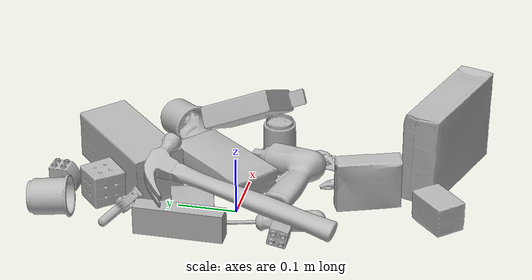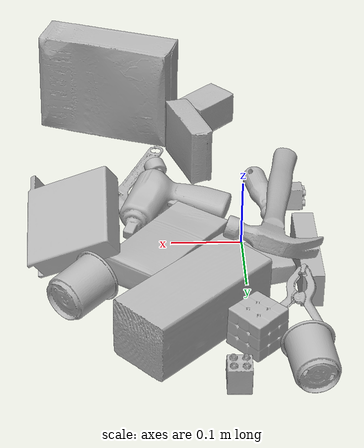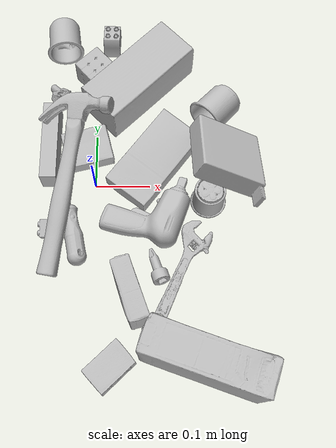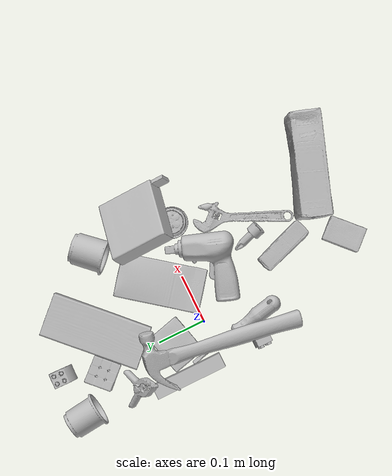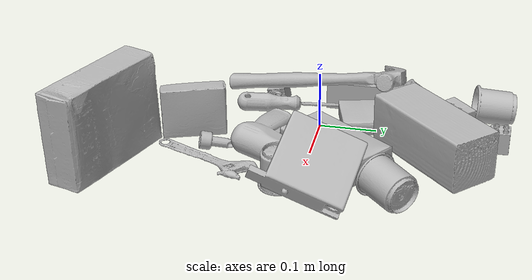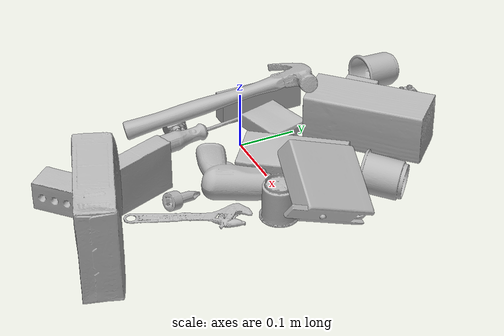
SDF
<sdf version="1.4">
  <world name="default">
    <light name="light1" type="point">
      <pose>0 0 1 0 0 0</pose>
      <diffuse>3 3 3 1</diffuse>
      <specular>3 3 3 1</specular>
    </light>
    <light name="light2" type="point">
      <pose>0 0.5 2 0 0 0</pose>
      <diffuse>1 1 1 1</diffuse>
      <specular>1 1 1 1</specular>
    </light>
    <light name="light3" type="point">
      <pose>0 0.5 2 0 0 0</pose>
      <diffuse>3 3 3 1</diffuse>
      <specular>3 3 3 1</specular>
    </light>
    <scene>
      <ambient>0.7 0.7 0.7</ambient>
    </scene>
    <model name="box21">
      <link name="link_box21">
        <collision name="default">
          <geometry>
            <mesh>
              <uri>model://cracker_box/collision_meshes/collision.obj</uri>
              <scale>1.0 1.0 1.0</scale>
            </mesh>
          </geometry>
          <surface>
            <friction>
              <ode>
                <mu>0.5</mu>
                <mu2>0.5</mu2>
              </ode>
            </friction>
          <contact>
        <ode>
            <max_vel>0</max_vel>
            <min_depth>0.0001</min_depth>
            <kp>1e8</kp>
        </ode>
    </contact></surface>
        </collision>
        <visual name="default">
          <geometry>
            <mesh>
              <uri>model://cracker_box/visual_meshes/visual.dae</uri>
              <scale>1.0 1.0 1.0</scale>
            </mesh>
          </geometry>
        </visual>
        <inertial>
          <mass>2.732837677001953</mass>
          <pose>0.000946416228543967 0.0002543424488976598 -0.0017029533628374338 -0.00031620734042352985 -0.011106490532052917 0.002546795466230165</pose>
          <inertia>
            <ixx>0.0069511193</ixx>
            <iyy>0.011477663</iyy>
            <izz>0.01637968</izz>
            <ixy>0</ixy>
            <ixz>0</ixz>
            <iyz>0</iyz>
          </inertia>
        </inertial>
      </link>
      <pose>0.1892460137605667 -0.32129380106925964 0.08175767213106155 1.545234192613694 0.009040240342031788 2.812722534082688</pose>
    </model>
    <model name="box22">
      <link name="link_box22">
        <collision name="default">
          <geometry>
            <mesh>
              <uri>model://jenga/collision_meshes/collision.obj</uri>
              <scale>1.0 1.0 1.0</scale>
            </mesh>
          </geometry>
          <surface>
            <friction>
              <ode>
                <mu>0.5</mu>
                <mu2>0.5</mu2>
              </ode>
            </friction>
          <contact>
        <ode>
            <max_vel>0</max_vel>
            <min_depth>0.0001</min_depth>
            <kp>1e8</kp>
        </ode>
    </contact></surface>
        </collision>
        <visual name="default">
          <geometry>
            <mesh>
              <uri>model://jenga/visual_meshes/visual.dae</uri>
              <scale>1.0 1.0 1.0</scale>
            </mesh>
          </geometry>
        </visual>
        <inertial>
          <mass>0.1563216596841812</mass>
          <pose>-2.502855807051674e-07 -0.00010250010382151231 -4.0923401684267446e-05 0.0 -7.34215461761844e-07 0.0</pose>
          <inertia>
            <ixx>4.3258e-05</ixx>
            <iyy>0.000293115</iyy>
            <izz>0.0003129252</izz>
            <ixy>0</ixy>
            <ixz>0</ixz>
            <iyz>0</iyz>
          </inertia>
        </inertial>
      </link>
      <pose>-0.08483713865280151 0.07525363564491272 0.024496935307979584 -1.5775022559674907 2.990207971248664e-07 1.5707966009774597</pose>
    </model>
    <model name="box23">
      <link name="link_box23">
        <collision name="default">
          <geometry>
            <mesh>
              <uri>model://pudding_box/collision_meshes/collision.obj</uri>
              <scale>1.0 1.0 1.0</scale>
            </mesh>
          </geometry>
          <surface>
            <friction>
              <ode>
                <mu>0.5</mu>
                <mu2>0.5</mu2>
              </ode>
            </friction>
          <contact>
        <ode>
            <max_vel>0</max_vel>
            <min_depth>0.0001</min_depth>
            <kp>1e8</kp>
        </ode>
    </contact></surface>
        </collision>
        <visual name="default">
          <geometry>
            <mesh>
              <uri>model://pudding_box/visual_meshes/visual.dae</uri>
              <scale>1.0 1.0 1.0</scale>
            </mesh>
          </geometry>
        </visual>
        <inertial>
          <mass>0.32993465662002563</mass>
          <pose>0.0004894821904599667 0.0008067885064519942 -0.0005188827635720372 0.005213102236317791 -0.0066038015122011 0.020079823288174207</pose>
          <inertia>
            <ixx>0.00037297411</ixx>
            <iyy>0.00025093966</iyy>
            <izz>0.0005507938</izz>
            <ixy>0</ixy>
            <ixz>0</ixz>
            <iyz>0</iyz>
          </inertia>
        </inertial>
      </link>
      <pose>0.06701834499835968 -0.2083444595336914 0.044596586376428604 0.006649396555571304 -1.547314143325358 -2.819919636246475</pose>
    </model>
    <model name="cup1">
      <link name="link_cup1">
        <collision name="default">
          <geometry>
            <mesh>
              <uri>model://c_cups/collision_meshes/collision.obj</uri>
              <scale>1.0 1.0 1.0</scale>
            </mesh>
          </geometry>
          <surface>
            <friction>
              <ode>
                <mu>0.5</mu>
                <mu2>0.5</mu2>
              </ode>
            </friction>
          <contact>
        <ode>
            <max_vel>0</max_vel>
            <min_depth>0.0001</min_depth>
            <kp>1e8</kp>
        </ode>
    </contact></surface>
        </collision>
        <visual name="default">
          <geometry>
            <mesh>
              <uri>model://c_cups/visual_meshes/visual.dae</uri>
              <scale>1.0 1.0 1.0</scale>
            </mesh>
          </geometry>
        </visual>
        <inertial>
          <mass>0.05159630998969078</mass>
          <pose>0.0007237254758365452 0.0020153908990323544 -0.001275097718462348 0.3021575981944983 0.01346171900925468 -0.08771841488334552</pose>
          <inertia>
            <ixx>3.8371487e-05</ixx>
            <iyy>3.7693397e-05</iyy>
            <izz>3.3934528e-05</izz>
            <ixy>0</ixy>
            <ixz>0</ixz>
            <iyz>0</iyz>
          </inertia>
        </inertial>
      </link>
      <pose>0.20729155838489532 -0.029617182910442352 0.03347041830420494 -3.1411557644716868 0.000299906052219935 0.10694606698177749</pose>
    </model>
    <model name="cup2">
      <link name="link_cup2">
        <collision name="default">
          <geometry>
            <mesh>
              <uri>model://d_cups/collision_meshes/collision.obj</uri>
              <scale>1.0 1.0 1.0</scale>
            </mesh>
          </geometry>
          <surface>
            <friction>
              <ode>
                <mu>0.5</mu>
                <mu2>0.5</mu2>
              </ode>
            </friction>
          <contact>
        <ode>
            <max_vel>0</max_vel>
            <min_depth>0.0001</min_depth>
            <kp>1e8</kp>
        </ode>
    </contact></surface>
        </collision>
        <visual name="default">
          <geometry>
            <mesh>
              <uri>model://d_cups/visual_meshes/visual.dae</uri>
              <scale>1.0 1.0 1.0</scale>
            </mesh>
          </geometry>
        </visual>
        <inertial>
          <mass>0.029099034145474434</mass>
          <pose>0.0008068051538430154 0.0019117402844130993 -0.0022666510194540024 0.24013101341738077 -0.2470893725106806 0.5942204262094062</pose>
          <inertia>
            <ixx>2.436274e-05</ixx>
            <iyy>2.429223e-05</iyy>
            <izz>2.2052422e-05</izz>
            <ixy>0</ixy>
            <ixz>0</ixz>
            <iyz>0</iyz>
          </inertia>
        </inertial>
      </link>
      <pose>-0.06834589689970016 0.29915329813957214 0.032593198120594025 -1.4779868664191136 -0.21591249889587133 -3.0464109565798694</pose>
    </model>
    <model name="box11">
      <link name="link_box11">
        <collision name="default">
          <geometry>
            <mesh>
              <uri>model://sugar_box/collision_meshes/collision.obj</uri>
              <scale>1.0 1.0 1.0</scale>
            </mesh>
          </geometry>
          <surface>
            <friction>
              <ode>
                <mu>0.5</mu>
                <mu2>0.5</mu2>
              </ode>
            </friction>
          <contact>
        <ode>
            <max_vel>0</max_vel>
            <min_depth>0.0001</min_depth>
            <kp>1e8</kp>
        </ode>
    </contact></surface>
        </collision>
        <visual name="default">
          <geometry>
            <mesh>
              <uri>model://sugar_box/visual_meshes/visual.dae</uri>
              <scale>1.0 1.0 1.0</scale>
            </mesh>
          </geometry>
        </visual>
        <inertial>
          <mass>0.6083751916885376</mass>
          <pose>0.0010343727190047503 3.849109634757042e-05 -0.00036364805418998003 -0.00040462662026216373 0.00105066363904409 0.002615379021562279</pose>
          <inertia>
            <ixx>0.0005068966</ixx>
            <iyy>0.0016383935</iyy>
            <izz>0.0019613528</izz>
            <ixy>0</ixy>
            <ixz>0</ixz>
            <iyz>0</iyz>
          </inertia>
        </inertial>
      </link>
      <pose>0.10782263427972794 0.04438312351703644 0.022599507123231888 -3.1117128022671023 -0.02297001136945148 0.9118202043964284</pose>
    </model>
    <model name="box12">
      <link name="link_box12">
        <collision name="default">
          <geometry>
            <mesh>
              <uri>model://wood_block/collision_meshes/collision.obj</uri>
              <scale>1.0 1.0 1.0</scale>
            </mesh>
          </geometry>
          <surface>
            <friction>
              <ode>
                <mu>0.5</mu>
                <mu2>0.5</mu2>
              </ode>
            </friction>
          <contact>
        <ode>
            <max_vel>0</max_vel>
            <min_depth>0.0001</min_depth>
            <kp>1e8</kp>
        </ode>
    </contact></surface>
        </collision>
        <visual name="default">
          <geometry>
            <mesh>
              <uri>model://wood_block/visual_meshes/visual.dae</uri>
              <scale>1.0 1.0 1.0</scale>
            </mesh>
          </geometry>
        </visual>
        <inertial>
          <mass>1.904224157333374</mass>
          <pose>-5.813315510749817e-06 -0.000570809468626976 0.0002640858292579651 -0.05220878944738684 -0.005192694452018099 -0.006861378422653873</pose>
          <inertia>
            <ixx>0.00254814</ixx>
            <iyy>0.008049577</iyy>
            <izz>0.008019466</izz>
            <ixy>0</ixy>
            <ixz>0</ixz>
            <iyz>0</iyz>
          </inertia>
        </inertial>
      </link>
      <pose>0.07841295748949051 0.20211081206798553 0.045700665563344955 1.5681276560291715 -0.006938688678653019 0.7771782150305362</pose>
    </model>
    <model name="box13">
      <link name="link_box13">
        <collision name="default">
          <geometry>
            <mesh>
              <uri>model://gelatin_box/collision_meshes/collision.obj</uri>
              <scale>1.0 1.0 1.0</scale>
            </mesh>
          </geometry>
          <surface>
            <friction>
              <ode>
                <mu>0.5</mu>
                <mu2>0.5</mu2>
              </ode>
            </friction>
          <contact>
        <ode>
            <max_vel>0</max_vel>
            <min_depth>0.0001</min_depth>
            <kp>1e8</kp>
        </ode>
    </contact></surface>
        </collision>
        <visual name="default">
          <geometry>
            <mesh>
              <uri>model://gelatin_box/visual_meshes/visual.dae</uri>
              <scale>1.0 1.0 1.0</scale>
            </mesh>
          </geometry>
        </visual>
        <inertial>
          <mass>0.15982484817504883</mass>
          <pose>0.0004319618456065655 0.00011156871187267825 -0.0003640321083366871 -0.001050372093012012 -0.00475581868936722 0.016440559471878533</pose>
          <inertia>
            <ixx>0.000112823305</ixx>
            <iyy>8.0589096e-05</iyy>
            <izz>0.0001717422</izz>
            <ixy>0</ixy>
            <ixz>0</ixz>
            <iyz>0</iyz>
          </inertia>
        </inertial>
      </link>
      <pose>-0.017152264714241028 0.07064320147037506 0.015168320387601852 0.005597502352654905 -0.007304561090122923 1.8160721521415089</pose>
    </model>
    <model name="box14">
      <link name="link_box14">
        <collision name="default">
          <geometry>
            <mesh>
              <uri>model://rubiks_cube/collision_meshes/collision.obj</uri>
              <scale>1.0 1.0 1.0</scale>
            </mesh>
          </geometry>
          <surface>
            <friction>
              <ode>
                <mu>0.5</mu>
                <mu2>0.5</mu2>
              </ode>
            </friction>
          <contact>
        <ode>
            <max_vel>0</max_vel>
            <min_depth>0.0001</min_depth>
            <kp>1e8</kp>
        </ode>
    </contact></surface>
        </collision>
        <visual name="default">
          <geometry>
            <mesh>
              <uri>model://rubiks_cube/visual_meshes/visual.dae</uri>
              <scale>1.0 1.0 1.0</scale>
            </mesh>
          </geometry>
        </visual>
        <inertial>
          <mass>0.19606205821037292</mass>
          <pose>2.6721043468569405e-05 5.256967051536776e-05 -7.264316536748083e-06 -0.05467227514375443 -0.09814085307594407 -0.03445353526761094</pose>
          <inertia>
            <ixx>0.00010833746</ixx>
            <iyy>0.000107832224</iyy>
            <izz>0.00010923522</izz>
            <ixy>0</ixy>
            <ixz>0</ixz>
            <iyz>0</iyz>
          </inertia>
        </inertial>
      </link>
      <pose>-0.004044835921376944 0.22770705819129944 0.029273301362991333 1.569867418869 -0.02167856821012785 0.7504582371336637</pose>
    </model>
    <model name="cup15">
      <link name="link_cup15">
        <collision name="default">
          <geometry>
            <mesh>
              <uri>model://e_cups/collision_meshes/collision.obj</uri>
              <scale>1.0 1.0 1.0</scale>
            </mesh>
          </geometry>
          <surface>
            <friction>
              <ode>
                <mu>0.5</mu>
                <mu2>0.5</mu2>
              </ode>
            </friction>
          <contact>
        <ode>
            <max_vel>0</max_vel>
            <min_depth>0.0001</min_depth>
            <kp>1e8</kp>
        </ode>
    </contact></surface>
        </collision>
        <visual name="default">
          <geometry>
            <mesh>
              <uri>model://e_cups/visual_meshes/visual.dae</uri>
              <scale>1.0 1.0 1.0</scale>
            </mesh>
          </geometry>
        </visual>
        <inertial>
          <mass>0.09305236488580704</mass>
          <pose>0.0011355740716680884 0.0028797851409763098 -0.003882972989231348 0.6952374393777071 0.08767548394821409 -0.5235242886817723</pose>
          <inertia>
            <ixx>8.204892e-05</ixx>
            <iyy>8.5752865e-05</iyy>
            <izz>7.844823e-05</izz>
            <ixy>0</ixy>
            <ixz>0</ixz>
            <iyz>0</iyz>
          </inertia>
        </inertial>
      </link>
      <pose>0.22632858157157898 0.14685972034931183 0.034881915897130966 -1.4762072307928469 0.4609526522233804 2.435292203759958</pose>
    </model>
    <model name="toy1">
      <link name="link_toy1">
        <collision name="default">
          <geometry>
            <mesh>
              <uri>model://foam_brick/collision_meshes/collision.obj</uri>
              <scale>1.0 1.0 1.0</scale>
            </mesh>
          </geometry>
          <surface>
            <friction>
              <ode>
                <mu>0.5</mu>
                <mu2>0.5</mu2>
              </ode>
            </friction>
          <contact>
        <ode>
            <max_vel>0</max_vel>
            <min_depth>0.0001</min_depth>
            <kp>1e8</kp>
        </ode>
    </contact></surface>
        </collision>
        <visual name="default">
          <geometry>
            <mesh>
              <uri>model://foam_brick/visual_meshes/visual.dae</uri>
              <scale>1.0 1.0 1.0</scale>
            </mesh>
          </geometry>
        </visual>
        <inertial>
          <mass>0.27397871017456055</mass>
          <pose>-0.0002522472059354186 0.0003458441060502082 -0.00025321010616607964 -0.2940210021807357 0.01727444677850634 -0.0007449878009638903</pose>
          <inertia>
            <ixx>0.00011967903</ixx>
            <iyy>0.00019107372</iyy>
            <izz>0.00019350204</izz>
            <ixy>0</ixy>
            <ixz>0</ixz>
            <iyz>0</iyz>
          </inertia>
        </inertial>
      </link>
      <pose>0.03406968712806702 -0.33001604676246643 0.02591068297624588 1.5828209257872066 -0.00037576440724572787 0.755711929046726</pose>
    </model>
    <model name="toy2">
      <link name="link_toy2">
        <collision name="default">
          <geometry>
            <mesh>
              <uri>model://b_toy_airplane/collision_meshes/collision.obj</uri>
              <scale>1.0 1.0 1.0</scale>
            </mesh>
          </geometry>
          <surface>
            <friction>
              <ode>
                <mu>0.5</mu>
                <mu2>0.5</mu2>
              </ode>
            </friction>
          <contact>
        <ode>
            <max_vel>0</max_vel>
            <min_depth>0.0001</min_depth>
            <kp>1e8</kp>
        </ode>
    </contact></surface>
        </collision>
        <visual name="default">
          <geometry>
            <mesh>
              <uri>model://b_toy_airplane/visual_meshes/visual.dae</uri>
              <scale>1.0 1.0 1.0</scale>
            </mesh>
          </geometry>
        </visual>
        <inertial>
          <mass>0.24932990968227386</mass>
          <pose>0.005081362556666136 0.004015582613646984 0.00954306498169899 -0.04001809188182278 -0.04022184417958596 -0.5601502893643007</pose>
          <inertia>
            <ixx>0.0004628856</ixx>
            <iyy>0.00018501986</iyy>
            <izz>0.00057587575</izz>
            <ixy>0</ixy>
            <ixz>0</ixz>
            <iyz>0</iyz>
          </inertia>
        </inertial>
      </link>
      <pose>0.10323096066713333 -0.07310766726732254 0.03568907827138901 3.0695709099852113 0.07405937250861175 1.2299182073850627</pose>
    </model>
    <model name="toy3">
      <link name="link_toy3">
        <collision name="default">
          <geometry>
            <mesh>
              <uri>model://f_lego_duplo/collision_meshes/collision.obj</uri>
              <scale>1.0 1.0 1.0</scale>
            </mesh>
          </geometry>
          <surface>
            <friction>
              <ode>
                <mu>0.5</mu>
                <mu2>0.5</mu2>
              </ode>
            </friction>
          <contact>
        <ode>
            <max_vel>0</max_vel>
            <min_depth>0.0001</min_depth>
            <kp>1e8</kp>
        </ode>
    </contact></surface>
        </collision>
        <visual name="default">
          <geometry>
            <mesh>
              <uri>model://f_lego_duplo/visual_meshes/visual.dae</uri>
              <scale>1.0 1.0 1.0</scale>
            </mesh>
          </geometry>
        </visual>
        <inertial>
          <mass>0.027739444747567177</mass>
          <pose>2.369416324654594e-05 0.00013393194240052253 0.0018837876850739121 0.02983859902212722 -0.014425048030447486 -0.6756637170693943</pose>
          <inertia>
            <ixx>5.8614983e-06</ixx>
            <iyy>5.913718e-06</iyy>
            <izz>5.0880294e-06</izz>
            <ixy>0</ixy>
            <ixz>0</ixz>
            <iyz>0</iyz>
          </inertia>
        </inertial>
      </link>
      <pose>-0.07789593189954758 -0.08902888000011444 0.01867661438882351 -1.6311760496560825 1.3801053128685532 1.5021603600636633</pose>
    </model>
    <model name="toy4">
      <link name="link_toy4">
        <collision name="default">
          <geometry>
            <mesh>
              <uri>model://d_toy_airplane/collision_meshes/collision.obj</uri>
              <scale>1.0 1.0 1.0</scale>
            </mesh>
          </geometry>
          <surface>
            <friction>
              <ode>
                <mu>0.5</mu>
                <mu2>0.5</mu2>
              </ode>
            </friction>
          <contact>
        <ode>
            <max_vel>0</max_vel>
            <min_depth>0.0001</min_depth>
            <kp>1e8</kp>
        </ode>
    </contact></surface>
        </collision>
        <visual name="default">
          <geometry>
            <mesh>
              <uri>model://d_toy_airplane/visual_meshes/visual.dae</uri>
              <scale>1.0 1.0 1.0</scale>
            </mesh>
          </geometry>
        </visual>
        <inertial>
          <mass>0.018694162368774414</mass>
          <pose>9.410315396962687e-05 -5.80932610318996e-05 -0.011728095822036266 0.0002670379770250361 0.004678992469792915 0.5194762078456472</pose>
          <inertia>
            <ixx>5.6041463e-06</ixx>
            <iyy>5.6083722e-06</iyy>
            <izz>1.6919282e-06</izz>
            <ixy>0</ixy>
            <ixz>0</ixz>
            <iyz>0</iyz>
          </inertia>
        </inertial>
      </link>
      <pose>0.11173326522111893 -0.15235202014446259 0.011408179067075253 1.7958427173104927 0.23016404640304156 -2.7782795000203286</pose>
    </model>
    <model name="toy5">
      <link name="link_toy5">
        <collision name="default">
          <geometry>
            <mesh>
              <uri>model://d_lego_duplo/collision_meshes/collision.obj</uri>
              <scale>1.0 1.0 1.0</scale>
            </mesh>
          </geometry>
          <surface>
            <friction>
              <ode>
                <mu>0.5</mu>
                <mu2>0.5</mu2>
              </ode>
            </friction>
          <contact>
        <ode>
            <max_vel>0</max_vel>
            <min_depth>0.0001</min_depth>
            <kp>1e8</kp>
        </ode>
    </contact></surface>
        </collision>
        <visual name="default">
          <geometry>
            <mesh>
              <uri>model://d_lego_duplo/visual_meshes/visual.dae</uri>
              <scale>1.0 1.0 1.0</scale>
            </mesh>
          </geometry>
        </visual>
        <inertial>
          <mass>0.04560890793800354</mass>
          <pose>0.0028305635787546635 0.00016366137424483895 0.0008589806966483593 0.08010848326521293 -0.38355231288211744 0.0010296590748680565</pose>
          <inertia>
            <ixx>8.829212e-06</ixx>
            <iyy>1.253105e-05</iyy>
            <izz>1.2084434e-05</izz>
            <ixy>0</ixy>
            <ixz>0</ixz>
            <iyz>0</iyz>
          </inertia>
        </inertial>
      </link>
      <pose>0.02465665712952614 0.3033082187175751 0.0217400174587965 1.0640901553932936e-06 -1.4513381810126396e-07 1.5421575156061789</pose>
    </model>
    <model name="toy6">
      <link name="link_toy6">
        <collision name="default">
          <geometry>
            <mesh>
              <uri>model://nine_hole_peg_test/collision_meshes/collision.obj</uri>
              <scale>1.0 1.0 1.0</scale>
            </mesh>
          </geometry>
          <surface>
            <friction>
              <ode>
                <mu>0.5</mu>
                <mu2>0.5</mu2>
              </ode>
            </friction>
          <contact>
        <ode>
            <max_vel>0</max_vel>
            <min_depth>0.0001</min_depth>
            <kp>1e8</kp>
        </ode>
    </contact></surface>
        </collision>
        <visual name="default">
          <geometry>
            <mesh>
              <uri>model://nine_hole_peg_test/visual_meshes/visual.dae</uri>
              <scale>1.0 1.0 1.0</scale>
            </mesh>
          </geometry>
        </visual>
        <inertial>
          <mass>0.9848376512527466</mass>
          <pose>-0.004617386031895876 -0.009647614322602749 2.646068787726108e-05 -0.0014666785927196467 0.0007194180015025765 -0.6342414580933873</pose>
          <inertia>
            <ixx>0.0015399556</ixx>
            <iyy>0.0014378404</iyy>
            <izz>0.0026984566</izz>
            <ixy>0</ixy>
            <ixz>0</ixz>
            <iyz>0</iyz>
          </inertia>
        </inertial>
      </link>
      <pose>0.24243482947349548 0.024119006469845772 0.06686669588088989 2.7155817010697927 0.43984111209110127 -0.18195082750524988</pose>
    </model>
    <model name="hardware1">
      <link name="link_hardware1">
        <collision name="default">
          <geometry>
            <mesh>
              <uri>model://hammer/collision_meshes/collision.obj</uri>
              <scale>1.0 1.0 1.0</scale>
            </mesh>
          </geometry>
          <surface>
            <friction>
              <ode>
                <mu>0.5</mu>
                <mu2>0.5</mu2>
              </ode>
            </friction>
          <contact>
        <ode>
            <max_vel>0</max_vel>
            <min_depth>0.0001</min_depth>
            <kp>1e8</kp>
        </ode>
    </contact></surface>
        </collision>
        <visual name="default">
          <geometry>
            <mesh>
              <uri>model://hammer/visual_meshes/visual.dae</uri>
              <scale>1.0 1.0 1.0</scale>
            </mesh>
          </geometry>
        </visual>
        <inertial>
          <mass>0.19812075793743134</mass>
          <pose>0.009415780194103718 -0.011892358772456646 -0.00012350631004665047 0.023155553199567438 -0.004792165144826806 -0.012760319769687977</pose>
          <inertia>
            <ixx>8.4865314e-05</ixx>
            <iyy>0.0022996028</iyy>
            <izz>0.0023654876</izz>
            <ixy>0</ixy>
            <ixz>0</ixz>
            <iyz>0</iyz>
          </inertia>
        </inertial>
      </link>
      <pose>-0.059404030442237854 -0.0034002477768808603 0.06276708096265793 -0.3117456331621229 -0.18784517993041172 1.3972486642780106</pose>
    </model>
    <model name="hardware2">
      <link name="link_hardware2">
        <collision name="default">
          <geometry>
            <mesh>
              <uri>model://medium_clamp/collision_meshes/collision.obj</uri>
              <scale>1.0 1.0 1.0</scale>
            </mesh>
          </geometry>
          <surface>
            <friction>
              <ode>
                <mu>0.5</mu>
                <mu2>0.5</mu2>
              </ode>
            </friction>
          <contact>
        <ode>
            <max_vel>0</max_vel>
            <min_depth>0.0001</min_depth>
            <kp>1e8</kp>
        </ode>
    </contact></surface>
        </collision>
        <visual name="default">
          <geometry>
            <mesh>
              <uri>model://medium_clamp/visual_meshes/visual.dae</uri>
              <scale>1.0 1.0 1.0</scale>
            </mesh>
          </geometry>
        </visual>
        <inertial>
          <mass>0.022759946063160896</mass>
          <pose>0.005390991922467947 0.00039532387745566666 -0.0001222159044118598 -0.0012269199415174078 0.0025845019151957355 0.03820777718195871</pose>
          <inertia>
            <ixx>6.200628e-06</ixx>
            <iyy>9.023669e-06</iyy>
            <izz>1.3899154e-05</izz>
            <ixy>0</ixy>
            <ixz>0</ixz>
            <iyz>0</iyz>
          </inertia>
        </inertial>
      </link>
      <pose>-0.06411217898130417 0.17417709529399872 0.03146248310804367 0.006187637344612737 -0.8410886234259632 -1.8793427257118633</pose>
    </model>
    <model name="hardware3">
      <link name="link_hardware3">
        <collision name="default">
          <geometry>
            <mesh>
              <uri>model://flat_screwdriver/collision_meshes/collision.obj</uri>
              <scale>1.0 1.0 1.0</scale>
            </mesh>
          </geometry>
          <surface>
            <friction>
              <ode>
                <mu>0.5</mu>
                <mu2>0.5</mu2>
              </ode>
            </friction>
          <contact>
        <ode>
            <max_vel>0</max_vel>
            <min_depth>0.0001</min_depth>
            <kp>1e8</kp>
        </ode>
    </contact></surface>
        </collision>
        <visual name="default">
          <geometry>
            <mesh>
              <uri>model://flat_screwdriver/visual_meshes/visual.dae</uri>
              <scale>1.0 1.0 1.0</scale>
            </mesh>
          </geometry>
        </visual>
        <inertial>
          <mass>0.09131896495819092</mass>
          <pose>-0.0489187091588974 -0.0006576800951734185 -0.0006140916375443339 -0.5615616021105532 -0.003233725851923771 0.0069822762955213</pose>
          <inertia>
            <ixx>1.0789267e-05</ixx>
            <iyy>0.00013697217</iyy>
            <izz>0.00013690875</izz>
            <ixy>0</ixy>
            <ixz>0</ixz>
            <iyz>0</iyz>
          </inertia>
        </inertial>
      </link>
      <pose>-0.04605643451213837 -0.05158909410238266 0.015541668981313705 0.2374760368145365 0.04879644912197663 1.7567691791968325</pose>
    </model>
    <model name="hardware4">
      <link name="link_hardware4">
        <collision name="default">
          <geometry>
            <mesh>
              <uri>model://adjustable_wrench/collision_meshes/collision.obj</uri>
              <scale>1.0 1.0 1.0</scale>
            </mesh>
          </geometry>
          <surface>
            <friction>
              <ode>
                <mu>0.5</mu>
                <mu2>0.5</mu2>
              </ode>
            </friction>
          <contact>
        <ode>
            <max_vel>0</max_vel>
            <min_depth>0.0001</min_depth>
            <kp>1e8</kp>
        </ode>
    </contact></surface>
        </collision>
        <visual name="default">
          <geometry>
            <mesh>
              <uri>model://adjustable_wrench/visual_meshes/visual.dae</uri>
              <scale>1.0 1.0 1.0</scale>
            </mesh>
          </geometry>
        </visual>
        <inertial>
          <mass>0.023054517805576324</mass>
          <pose>0.03740980476140976 -0.0028968877159059048 -0.0011149226920679212 -0.01447335734168526 0.006656027895675122 -0.010954173130845575</pose>
          <inertia>
            <ixx>4.7184403e-06</ixx>
            <iyy>5.5223813e-05</iyy>
            <izz>5.969163e-05</izz>
            <ixy>0</ixy>
            <ixz>0</ixz>
            <iyz>0</iyz>
          </inertia>
        </inertial>
      </link>
      <pose>0.15842528641223907 -0.16186265647411346 0.0046288007870316505 3.098263468744395 -0.01603906762547699 1.1533243355205502</pose>
    </model>
  <physics type="ode">
      <max_contacts>50</max_contacts>
      <ode>
        <solver>
          <type>quick</type>
          <iters>75</iters>
        </solver>
        <constraints>
          <contact_max_correcting_vel>0</contact_max_correcting_vel>
          <contact_surface_layer>0</contact_surface_layer>
        </constraints>
      </ode>
    </physics></world>
</sdf>
